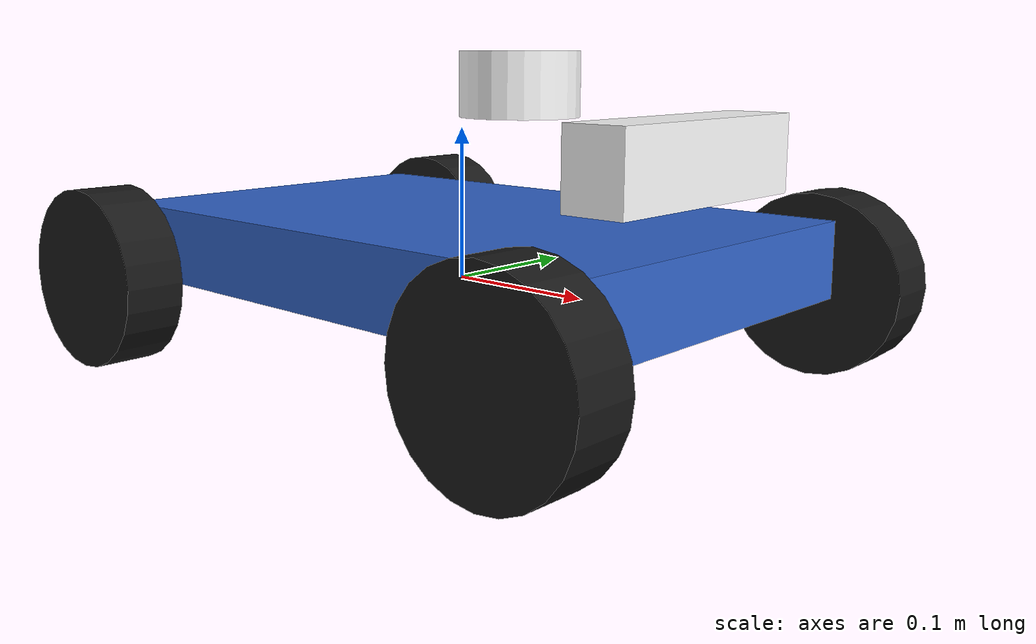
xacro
<?xml version="1.0"?>
<robot name="mi_robot" xmlns:xacro="http://www.ros.org/wiki/xacro">

  <!-- ===================== Parámetros de la variante ===================== -->
  <!-- TODO (Parte 1): reemplace cada ${TODO} por el valor de su variante -->
  <xacro:property name="rueda_radio" value="${0.06}"/>
  <xacro:property name="distancia_ejes" value="${0.36}"/>      <!-- wheelbase (m) -->
  <xacro:property name="separacion_ruedas" value="${0.32}"/>   <!-- track (m) -->
  <xacro:property name="lx" value="${distancia_ejes / 2.0}"/>
  <xacro:property name="ly" value="${separacion_ruedas / 2.0}"/>
  <xacro:property name="rueda_ancho" value="0.04"/>
  <xacro:property name="rueda_masa" value="0.3"/>

  <!-- Chasis (dado) -->
  <xacro:property name="chasis_largo" value="${distancia_ejes + 0.04}"/>
  <xacro:property name="chasis_ancho" value="${separacion_ruedas - rueda_ancho - 0.02}"/>
  <xacro:property name="chasis_alto" value="0.05"/>
  <xacro:property name="chasis_masa" value="3.0"/>

  <!-- ===================== Inercias (dadas) ===================== -->
  <xacro:macro name="inercia_caja" params="m x y z">
    <inertia ixx="${m*(y*y + z*z)/12.0}" ixy="0" ixz="0"
             iyy="${m*(x*x + z*z)/12.0}" iyz="0"
             izz="${m*(x*x + y*y)/12.0}"/>
  </xacro:macro>
  <!-- Cilindro con eje a lo largo de z local -->
  <xacro:macro name="inercia_cilindro" params="m r h">
    <inertia ixx="${m*(3*r*r + h*h)/12.0}" ixy="0" ixz="0"
             iyy="${m*(3*r*r + h*h)/12.0}" iyz="0"
             izz="${m*r*r/2.0}"/>
  </xacro:macro>

  <!-- ===================== Chasis (dado) ===================== -->
  <link name="base_link">
    <visual>
      <origin xyz="0 0 0.02" rpy="0 0 0"/>
      <geometry><box size="${chasis_largo} ${chasis_ancho} ${chasis_alto}"/></geometry>
      <material name="azul"><color rgba="0.2 0.4 0.8 1"/></material>
    </visual>
    <collision>
      <origin xyz="0 0 0.02" rpy="0 0 0"/>
      <geometry><box size="${chasis_largo} ${chasis_ancho} ${chasis_alto}"/></geometry>
    </collision>
    <inertial>
      <origin xyz="0 0 0.02" rpy="0 0 0"/>
      <mass value="${chasis_masa}"/>
      <xacro:inercia_caja m="${chasis_masa}" x="${chasis_largo}" y="${chasis_ancho}" z="${chasis_alto}"/>
    </inertial>
  </link>

  <!-- ===================== Ruedas (Parte 1) ===================== -->
  <xacro:macro name="rueda" params="prefijo x_signo y_signo">
    <link name="rueda_${prefijo}">
      <visual>
        <geometry><cylinder radius="${rueda_radio}" length="${rueda_ancho}"/></geometry>
        <material name="negro"><color rgba="0.1 0.1 0.1 1"/></material>
      </visual>
      <collision>
        <geometry><sphere radius="${rueda_radio}"/></geometry>
      </collision>
      <inertial>
        <origin xyz="0 0 0" rpy="0 0 0"/>
        <mass value="${rueda_masa}"/>
        <xacro:inercia_cilindro m="${rueda_masa}" r="${rueda_radio}" h="${rueda_ancho}"/>
      </inertial>
          </link>

    <joint name="joint_rueda_${prefijo}" type="continuous">
      <parent link="base_link"/>
      <child link="rueda_${prefijo}"/>
      <origin xyz="${x_signo*lx} ${y_signo*ly} 0" rpy="${-pi/2} 0 0"/>
      <axis xyz="0 0 1"/>
    </joint>
  </xacro:macro>

  <!-- TODO: instanciar del_der, tra_izq y tra_der -->
  <xacro:rueda prefijo="del_izq" x_signo="1" y_signo="1"/>
  <xacro:rueda prefijo="del_der" x_signo="1" y_signo="-1"/>
  <xacro:rueda prefijo="tra_der" x_signo="-1" y_signo="-1"/>
  <xacro:rueda prefijo="tra_izq" x_signo="-1" y_signo="1"/>

  <!-- ===================== RPLIDAR A3 (Parte 2) ===================== -->
  <!-- TODO: link "lidar_link" (cilindro) con dimensiones y masa de la hoja de datos:
       visual, collision e inertial -->

  <xacro:property name="lidar_radio" value="0.038"/>
  <xacro:property name="lidar_ancho" value="0.041"/>
  <xacro:property name="lidar_masa" value="0.190"/>

  <link name="lidar_link">
    <visual>
      <origin xyz="0 0 0" rpy="0 0 0"/>
      <geometry><cylinder radius="${lidar_radio}" length="${lidar_ancho}"/></geometry>
      <material name="blanco"><color rgba="1 1 1 1"/></material>
    </visual>
    <collision>
      <origin xyz="0 0 0" rpy="0 0 0"/>
      <geometry><cylinder radius="${lidar_radio}" length="${lidar_ancho}"/></geometry>
    </collision>
    <inertial>
      <origin xyz="0 0 0" rpy="0 0 0"/>
      <mass value="${lidar_masa}"/>
      <xacro:inercia_cilindro m="${lidar_masa}" r="${lidar_radio}" h="${lidar_ancho}"/>
    </inertial>
  </link>

  <!-- TODO: joint fijo "joint_lidar" base_link -> lidar_link en la posición de su variante -->
  <joint name="joint_lidar" type="fixed">
    <parent link="base_link"/>
    <child link="lidar_link"/>
    <origin xyz="0.05 0 0.13" rpy="0 0 0"/>
  </joint>

  <gazebo reference="lidar_link">
    <sensor name="rplidar_a3" type="gpu_lidar">
      <topic>/scan</topic>
      <gz_frame_id>lidar_link</gz_frame_id>
      <update_rate>10</update_rate>
      <always_on>1</always_on>
      <visualize>true</visualize>
      <lidar>
        <scan>
          <horizontal>
            <samples>1000</samples>          <!-- muestras por vuelta -->
            <resolution>1</resolution>
            <min_angle>-3.14159</min_angle>
            <max_angle>3.14159</max_angle>
          </horizontal>
        </scan>
        <range>
          <min>0.2</min>
          <max>20</max>
          <resolution>0.01</resolution>
        </range>
        <!-- TODO: ruido gaussiano, media 0, desviación 0.01 m -->
        <noise>
          <type>gaussian</type>
          <mean>0.0</mean>
          <stddev>0.01</stddev>
        </noise>
      </lidar>
    </sensor>
  </gazebo>

  <!-- ===================== Orbbec Astra (Parte 2) ===================== -->
  <!-- TODO: link "camara_link" (caja) con dimensiones y masa de la hoja de datos -->

  <xacro:property name="camara_x" value="0.04"/>
  <xacro:property name="camara_y" value="0.165"/>
  <xacro:property name="camara_z" value="0.048"/>
  <xacro:property name="camara_masa" value="0.310"/>

  <link name="camara_link">
    <visual>
      <origin xyz="0 0 0" rpy="0 0 0"/>
      <geometry><box size="${camara_x} ${camara_y} ${camara_z}"/></geometry>
      <material name="blanco"><color rgba="1 1 1 1"/></material>
    </visual>
    <collision>
      <origin xyz="0 0 0" rpy="0 0 0"/>
      <geometry><box size="${camara_x} ${camara_y} ${camara_z}"/></geometry>
    </collision>
    <inertial>
      <origin xyz="0 0 0" rpy="0 0 0"/>
      <mass value="${camara_masa}"/>
      <xacro:inercia_caja m="${camara_masa}" x="${camara_x}" y="${camara_y}" z="${camara_z}"/>
    </inertial>
  </link>

  <!-- TODO: joint fijo "joint_camara" base_link - camara_link en la posición de su variante -->
  <joint name="joint_camara" type="fixed">
    <parent link="base_link"/>
    <child link="camara_link"/>
    <origin xyz="0.17 0 0.09" rpy="0 0 0"/>
  </joint>

  <!-- TODO: link "camara_optica_link" y joint fijo "joint_camara_optica" desde
       camara_link con rpy = (-π/2, 0, -π/2) (REP-103) -->

  <link name="camara_optica_link">
  </link>

  <joint name="joint_camara_optica" type="fixed">
    <parent link="camara_link"/>
    <child link="camara_optica_link"/>
    <origin xyz="0 0 0" rpy="${-pi/2} 0 ${-pi/2}"/>
  </joint>

  <gazebo reference="camara_link">
    <sensor name="astra" type="rgbd_camera">
      <topic>/camara</topic>
      <gz_frame_id>camara_link</gz_frame_id>
      <update_rate>30</update_rate>
      <always_on>1</always_on>
      <camera>
        <horizontal_fov>1.01927228</horizontal_fov>   <!-- en radianes -->
        <image>
          <width>640</width>
          <height>480</height>
          <format>R8G8B8</format>
        </image>
        <clip>
          <near>0.4</near>
          <far>2</far>
        </clip>
        <depth_camera>
          <clip>
            <near>0.4</near>
            <far>2</far>
          </clip>
        </depth_camera>
      </camera>
    </sensor>
  </gazebo>

  <!-- ===================== Plugins de Gazebo (Parte 1) ===================== -->
  <xacro:macro name="motor" params="prefijo">
    <plugin filename="gz-sim-joint-controller-system" name="gz::sim::systems::JointController">
      <joint_name>joint_rueda_${prefijo}</joint_name>
      <use_force_commands>false</use_force_commands>
      <topic>/vel_rueda_${prefijo}</topic>
    </plugin>
  </xacro:macro>

  <gazebo>
    <xacro:motor prefijo="del_izq"/>
    <xacro:motor prefijo="del_der"/>
    <xacro:motor prefijo="tra_izq"/>
    <xacro:motor prefijo="tra_der"/>
    <!-- TODO: motores de del_der, tra_izq y tra_der -->

    <!-- TODO: plugin gz-sim-joint-state-publisher-system (encoders) -->
    <plugin filename="gz-sim-joint-state-publisher-system"
        name="gz::sim::systems::JointStatePublisher"/>
  </gazebo>

</robot>
